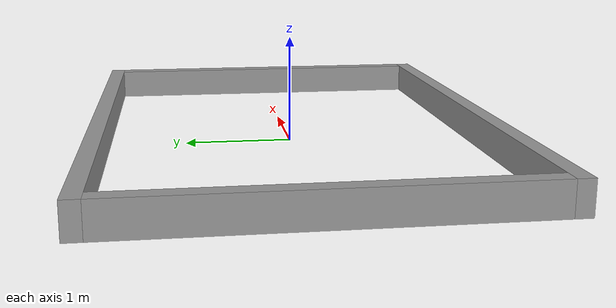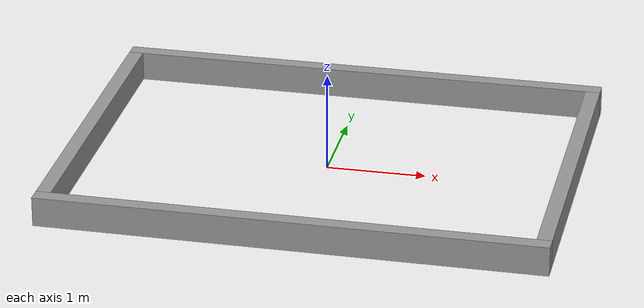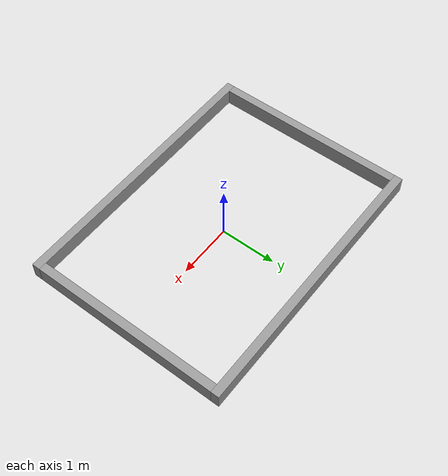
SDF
<?xml version='1.0'?>
<sdf version='1.6'>
  <model name='env_3x3'>
    <link name='Wall_16'>
      <pose frame=''>0 1.7826 0 0 -0 0</pose>
      <self_collide>0</self_collide>
      <enable_wind>0</enable_wind>
      <kinematic>0</kinematic>
      <gravity>1</gravity>
      <inertial>
        <mass>94.5</mass>
        <pose frame=''>0 0 0 0 -0 0</pose>
        <inertia>
          <ixx>0.885938</ixx>
          <ixy>0</ixy>
          <ixz>0</ixz>
          <iyy>71.5837</iyy>
          <iyz>0</iyz>
          <izz>71.0522</izz>
        </inertia>
      </inertial>
      <visual name='Wall_16_Visual'>
        <pose frame=''>0 0 0.15 0 -0 0</pose>
        <geometry>
          <box>
            <size>5.0366 0.15 0.3</size>
          </box>
        </geometry>
        <material>
          <script>
            <uri>file://media/materials/scripts/gazebo.material</uri>
            <name>Gazebo/Grey</name>
          </script>
          <ambient>1 1 1 1</ambient>
          <shader type='vertex'>
            <normal_map>__default__</normal_map>
          </shader>
          <diffuse>0.7 0.7 0.7 1</diffuse>
          <specular>0.01 0.01 0.01 1</specular>
          <emissive>0 0 0 1</emissive>
        </material>
        <meta>
          <layer>0</layer>
        </meta>
        <transparency>0</transparency>
        <cast_shadows>1</cast_shadows>
      </visual>
      <collision name='Wall_16_Collision'>
        <laser_retro>0</laser_retro>
        <max_contacts>10</max_contacts>
        <pose frame=''>0 0 0.15 0 -0 0</pose>
        <geometry>
          <box>
            <size>5.0366 0.15 0.3</size>
          </box>
        </geometry>
        <surface>
          <friction>
            <ode>
              <mu>1</mu>
              <mu2>1</mu2>
              <fdir1>0 0 0</fdir1>
              <slip1>0</slip1>
              <slip2>0</slip2>
            </ode>
            <torsional>
              <coefficient>1</coefficient>
              <patch_radius>0</patch_radius>
              <surface_radius>0</surface_radius>
              <use_patch_radius>1</use_patch_radius>
              <ode>
                <slip>0</slip>
              </ode>
            </torsional>
          </friction>
          <bounce>
            <restitution_coefficient>0</restitution_coefficient>
            <threshold>1e+06</threshold>
          </bounce>
          <contact>
            <collide_without_contact>0</collide_without_contact>
            <collide_without_contact_bitmask>1</collide_without_contact_bitmask>
            <collide_bitmask>1</collide_bitmask>
            <ode>
              <soft_cfm>0</soft_cfm>
              <soft_erp>0.2</soft_erp>
              <kp>1e+13</kp>
              <kd>1</kd>
              <max_vel>0.01</max_vel>
              <min_depth>0</min_depth>
            </ode>
            <bullet>
              <split_impulse>1</split_impulse>
              <split_impulse_penetration_threshold>-0.01</split_impulse_penetration_threshold>
              <soft_cfm>0</soft_cfm>
              <soft_erp>0.2</soft_erp>
              <kp>1e+13</kp>
              <kd>1</kd>
            </bullet>
          </contact>
        </surface>
      </collision>
    </link>
    <link name='Wall_17'>
      <pose frame=''>2.4433 0 0 0 0 -1.5708</pose>
      <self_collide>0</self_collide>
      <enable_wind>0</enable_wind>
      <kinematic>0</kinematic>
      <gravity>1</gravity>
      <inertial>
        <mass>79.1835</mass>
        <pose frame=''>0 0 0 0 -0 0</pose>
        <inertia>
          <ixx>0.742346</ixx>
          <ixy>0</ixy>
          <ixz>0</ixz>
          <iyy>42.2906</iyy>
          <iyz>0</iyz>
          <izz>41.8452</izz>
        </inertia>
      </inertial>
      <visual name='Wall_17_Visual'>
        <pose frame=''>0 0 0.15 0 -0 0</pose>
        <geometry>
          <box>
            <size>3.4152 0.15 0.3</size>
          </box>
        </geometry>
        <material>
          <script>
            <uri>file://media/materials/scripts/gazebo.material</uri>
            <name>Gazebo/Grey</name>
          </script>
          <ambient>1 1 1 1</ambient>
          <shader type='vertex'>
            <normal_map>__default__</normal_map>
          </shader>
          <diffuse>0.7 0.7 0.7 1</diffuse>
          <specular>0.01 0.01 0.01 1</specular>
          <emissive>0 0 0 1</emissive>
        </material>
        <meta>
          <layer>0</layer>
        </meta>
        <transparency>0</transparency>
        <cast_shadows>1</cast_shadows>
      </visual>
      <collision name='Wall_17_Collision'>
        <laser_retro>0</laser_retro>
        <max_contacts>10</max_contacts>
        <pose frame=''>0 0 0.15 0 -0 0</pose>
        <geometry>
          <box>
            <size>3.4152 0.15 0.3</size>
          </box>
        </geometry>
        <surface>
          <friction>
            <ode>
              <mu>1</mu>
              <mu2>1</mu2>
              <fdir1>0 0 0</fdir1>
              <slip1>0</slip1>
              <slip2>0</slip2>
            </ode>
            <torsional>
              <coefficient>1</coefficient>
              <patch_radius>0</patch_radius>
              <surface_radius>0</surface_radius>
              <use_patch_radius>1</use_patch_radius>
              <ode>
                <slip>0</slip>
              </ode>
            </torsional>
          </friction>
          <bounce>
            <restitution_coefficient>0</restitution_coefficient>
            <threshold>1e+06</threshold>
          </bounce>
          <contact>
            <collide_without_contact>0</collide_without_contact>
            <collide_without_contact_bitmask>1</collide_without_contact_bitmask>
            <collide_bitmask>1</collide_bitmask>
            <ode>
              <soft_cfm>0</soft_cfm>
              <soft_erp>0.2</soft_erp>
              <kp>1e+13</kp>
              <kd>1</kd>
              <max_vel>0.01</max_vel>
              <min_depth>0</min_depth>
            </ode>
            <bullet>
              <split_impulse>1</split_impulse>
              <split_impulse_penetration_threshold>-0.01</split_impulse_penetration_threshold>
              <soft_cfm>0</soft_cfm>
              <soft_erp>0.2</soft_erp>
              <kp>1e+13</kp>
              <kd>1</kd>
            </bullet>
          </contact>
        </surface>
      </collision>
    </link>
    <link name='Wall_18'>
      <pose frame=''>0 -1.7826 0 0 -0 3.14159</pose>
      <self_collide>0</self_collide>
      <enable_wind>0</enable_wind>
      <kinematic>0</kinematic>
      <gravity>1</gravity>
      <inertial>
        <mass>94.5</mass>
        <pose frame=''>0 0 0 0 -0 0</pose>
        <inertia>
          <ixx>0.885938</ixx>
          <ixy>0</ixy>
          <ixz>0</ixz>
          <iyy>71.5837</iyy>
          <iyz>0</iyz>
          <izz>71.0522</izz>
        </inertia>
      </inertial>
      <visual name='Wall_18_Visual'>
        <pose frame=''>0 0 0.15 0 -0 0</pose>
        <geometry>
          <box>
            <size>5.0366 0.15 0.3</size>
          </box>
        </geometry>
        <material>
          <script>
            <uri>file://media/materials/scripts/gazebo.material</uri>
            <name>Gazebo/Grey</name>
          </script>
          <ambient>1 1 1 1</ambient>
          <shader type='vertex'>
            <normal_map>__default__</normal_map>
          </shader>
          <diffuse>0.7 0.7 0.7 1</diffuse>
          <specular>0.01 0.01 0.01 1</specular>
          <emissive>0 0 0 1</emissive>
        </material>
        <meta>
          <layer>0</layer>
        </meta>
        <transparency>0</transparency>
        <cast_shadows>1</cast_shadows>
      </visual>
      <collision name='Wall_18_Collision'>
        <laser_retro>0</laser_retro>
        <max_contacts>10</max_contacts>
        <pose frame=''>0 0 0.15 0 -0 0</pose>
        <geometry>
          <box>
            <size>5.0366 0.15 0.3</size>
          </box>
        </geometry>
        <surface>
          <friction>
            <ode>
              <mu>1</mu>
              <mu2>1</mu2>
              <fdir1>0 0 0</fdir1>
              <slip1>0</slip1>
              <slip2>0</slip2>
            </ode>
            <torsional>
              <coefficient>1</coefficient>
              <patch_radius>0</patch_radius>
              <surface_radius>0</surface_radius>
              <use_patch_radius>1</use_patch_radius>
              <ode>
                <slip>0</slip>
              </ode>
            </torsional>
          </friction>
          <bounce>
            <restitution_coefficient>0</restitution_coefficient>
            <threshold>1e+06</threshold>
          </bounce>
          <contact>
            <collide_without_contact>0</collide_without_contact>
            <collide_without_contact_bitmask>1</collide_without_contact_bitmask>
            <collide_bitmask>1</collide_bitmask>
            <ode>
              <soft_cfm>0</soft_cfm>
              <soft_erp>0.2</soft_erp>
              <kp>1e+13</kp>
              <kd>1</kd>
              <max_vel>0.01</max_vel>
              <min_depth>0</min_depth>
            </ode>
            <bullet>
              <split_impulse>1</split_impulse>
              <split_impulse_penetration_threshold>-0.01</split_impulse_penetration_threshold>
              <soft_cfm>0</soft_cfm>
              <soft_erp>0.2</soft_erp>
              <kp>1e+13</kp>
              <kd>1</kd>
            </bullet>
          </contact>
        </surface>
      </collision>
    </link>
    <link name='Wall_19'>
      <pose frame=''>-2.4433 0 0 0 -0 1.5708</pose>
      <self_collide>0</self_collide>
      <enable_wind>0</enable_wind>
      <kinematic>0</kinematic>
      <gravity>1</gravity>
      <inertial>
        <mass>79.1835</mass>
        <pose frame=''>0 0 0 0 -0 0</pose>
        <inertia>
          <ixx>0.742346</ixx>
          <ixy>0</ixy>
          <ixz>0</ixz>
          <iyy>42.2906</iyy>
          <iyz>0</iyz>
          <izz>41.8452</izz>
        </inertia>
      </inertial>
      <visual name='Wall_19_Visual'>
        <pose frame=''>0 0 0.15 0 -0 0</pose>
        <geometry>
          <box>
            <size>3.4152 0.15 0.3</size>
          </box>
        </geometry>
        <material>
          <script>
            <uri>file://media/materials/scripts/gazebo.material</uri>
            <name>Gazebo/Grey</name>
          </script>
          <ambient>1 1 1 1</ambient>
          <shader type='vertex'>
            <normal_map>__default__</normal_map>
          </shader>
          <diffuse>0.7 0.7 0.7 1</diffuse>
          <specular>0.01 0.01 0.01 1</specular>
          <emissive>0 0 0 1</emissive>
        </material>
        <meta>
          <layer>0</layer>
        </meta>
        <transparency>0</transparency>
        <cast_shadows>1</cast_shadows>
      </visual>
      <collision name='Wall_19_Collision'>
        <laser_retro>0</laser_retro>
        <max_contacts>10</max_contacts>
        <pose frame=''>0 0 0.15 0 -0 0</pose>
        <geometry>
          <box>
            <size>3.4152 0.15 0.3</size>
          </box>
        </geometry>
        <surface>
          <friction>
            <ode>
              <mu>1</mu>
              <mu2>1</mu2>
              <fdir1>0 0 0</fdir1>
              <slip1>0</slip1>
              <slip2>0</slip2>
            </ode>
            <torsional>
              <coefficient>1</coefficient>
              <patch_radius>0</patch_radius>
              <surface_radius>0</surface_radius>
              <use_patch_radius>1</use_patch_radius>
              <ode>
                <slip>0</slip>
              </ode>
            </torsional>
          </friction>
          <bounce>
            <restitution_coefficient>0</restitution_coefficient>
            <threshold>1e+06</threshold>
          </bounce>
          <contact>
            <collide_without_contact>0</collide_without_contact>
            <collide_without_contact_bitmask>1</collide_without_contact_bitmask>
            <collide_bitmask>1</collide_bitmask>
            <ode>
              <soft_cfm>0</soft_cfm>
              <soft_erp>0.2</soft_erp>
              <kp>1e+13</kp>
              <kd>1</kd>
              <max_vel>0.01</max_vel>
              <min_depth>0</min_depth>
            </ode>
            <bullet>
              <split_impulse>1</split_impulse>
              <split_impulse_penetration_threshold>-0.01</split_impulse_penetration_threshold>
              <soft_cfm>0</soft_cfm>
              <soft_erp>0.2</soft_erp>
              <kp>1e+13</kp>
              <kd>1</kd>
            </bullet>
          </contact>
        </surface>
      </collision>
    </link>
    <static>1</static>
    <allow_auto_disable>1</allow_auto_disable>
  </model>
</sdf>
